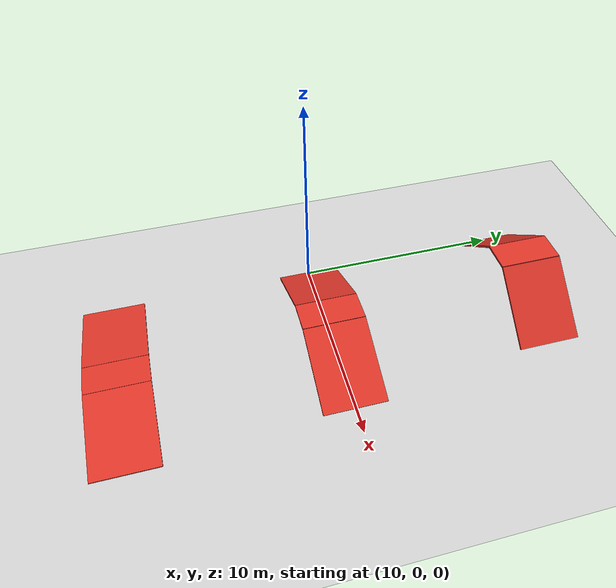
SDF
<?xml version="1.0" ?>
<sdf version="1.9">
    <world name="leg_test_ramps">

        <!-- Plugin for simulating physics -->
        <plugin
                filename="gz-sim-physics-system"
                name="gz::sim::systems::Physics">
        </plugin>

        <!-- Plugin for handling user commands -->
        <plugin
                filename="gz-sim-user-commands-system"
                name="gz::sim::systems::UserCommands">
        </plugin>

        <!-- Plugin for broadcasting scene updates -->
        <plugin
                filename="gz-sim-scene-broadcaster-system"
                name="gz::sim::systems::SceneBroadcaster">
        </plugin>

        <!-- Plugin for handling sensors like the LIDAR -->
        <plugin
                filename="gz-sim-sensors-system"
                name="gz::sim::systems::Sensors">
            <render_engine>ogre2</render_engine>
        </plugin>

        <!-- Plugin for IMU -->
        <plugin filename="gz-sim-imu-system"
                name="gz::sim::systems::Imu">
        </plugin>

        <!-- plugin for GPS  -->
        <plugin
                filename="gz-sim-navsat-system"
                name="gz::sim::systems::NavSat">
        </plugin>

        <light type="directional" name="sun">
            <cast_shadows>true</cast_shadows>
            <pose>0 0 10 0 0 0</pose>
            <diffuse>0.8 0.8 0.8 1</diffuse>
            <specular>0.2 0.2 0.2 1</specular>
            <direction>-0.5 0.1 -0.9</direction>
        </light>

        <model name="ground_plane">
            <static>true</static>
            <link name="link">
                <collision name="collision">
                    <geometry>
                        <plane>
                            <normal>0 0 1</normal>
                            <size>30 30</size>
                        </plane>
                    </geometry>
                </collision>
                <visual name="visual">
                    <geometry>
                        <plane>
                            <normal>0 0 1</normal>
                            <size>30 30</size>
                        </plane>
                    </geometry>
                    <material>
                        <ambient>0.8 0.8 0.8 1</ambient>
                        <diffuse>0.8 0.8 0.8 1</diffuse>
                        <specular>0.8 0.8 0.8 1</specular>
                    </material>
                </visual>
            </link>
        </model>

        <include>
            <uri>model://ramp_010</uri>
            <name>ramp_010</name>
            <pose>10 -10 0 0 0 0</pose>
        </include>

        <include>
            <uri>model://ramp_025</uri>
            <name>ramp_025</name>
            <pose>10 0 0 0 0 0</pose>
        </include>

        <include>
            <uri>model://ramp_040</uri>
            <name>ramp_040</name>
            <pose>10 10 0 0 0 0</pose>
        </include>

    </world>
</sdf>

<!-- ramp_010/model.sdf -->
<sdf version="1.9">
  <model name="ramp_010">
    <static>true</static>
    <link name="link">

      <!-- 각도: 10.0도 / 경사면 길이: 4.0m / 높이(H)=0.6946m / 수평거리(D)=3.9392m -->

      <collision name="up_collision">
        <pose>1.9696 0 0.3473 0 -0.174533 0</pose>
        <geometry><box><size>4.0 3.0 0.1</size></box></geometry>
      </collision>
      <visual name="up_visual">
        <pose>1.9696 0 0.3473 0 -0.174533 0</pose>
        <geometry><box><size>4.0 3.0 0.1</size></box></geometry>
        <material><ambient>0.8 0.15 0.1 1</ambient><diffuse>0.85 0.2 0.15 1</diffuse></material>
      </visual>

      <collision name="flat_collision">
        <pose>4.6892 0 0.6946 0 0 0</pose>
        <geometry><box><size>1.5 3.0 0.1</size></box></geometry>
      </collision>
      <visual name="flat_visual">
        <pose>4.6892 0 0.6946 0 0 0</pose>
        <geometry><box><size>1.5 3.0 0.1</size></box></geometry>
        <material><ambient>0.8 0.15 0.1 1</ambient><diffuse>0.85 0.2 0.15 1</diffuse></material>
      </visual>

      <collision name="down_collision">
        <pose>7.4088 0 0.3473 0 0.174533 0</pose>
        <geometry><box><size>4.0 3.0 0.1</size></box></geometry>
      </collision>
      <visual name="down_visual">
        <pose>7.4088 0 0.3473 0 0.174533 0</pose>
        <geometry><box><size>4.0 3.0 0.1</size></box></geometry>
        <material><ambient>0.8 0.15 0.1 1</ambient><diffuse>0.85 0.2 0.15 1</diffuse></material>
      </visual>

    </link>
  </model>
</sdf>

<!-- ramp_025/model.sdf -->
<sdf version="1.9">
  <model name="ramp_025">
    <static>true</static>
    <link name="link">

      <!-- 각도: 25.0도 / 경사면 길이: 4.0m / 높이(H)=1.6905m / 수평거리(D)=3.6252m -->

      <collision name="up_collision">
        <pose>1.8126 0 0.8452 0 -0.436332 0</pose>
        <geometry><box><size>4.0 3.0 0.1</size></box></geometry>
      </collision>
      <visual name="up_visual">
        <pose>1.8126 0 0.8452 0 -0.436332 0</pose>
        <geometry><box><size>4.0 3.0 0.1</size></box></geometry>
        <material><ambient>0.8 0.15 0.1 1</ambient><diffuse>0.85 0.2 0.15 1</diffuse></material>
      </visual>

      <collision name="flat_collision">
        <pose>4.3752 0 1.6905 0 0 0</pose>
        <geometry><box><size>1.5 3.0 0.1</size></box></geometry>
      </collision>
      <visual name="flat_visual">
        <pose>4.3752 0 1.6905 0 0 0</pose>
        <geometry><box><size>1.5 3.0 0.1</size></box></geometry>
        <material><ambient>0.8 0.15 0.1 1</ambient><diffuse>0.85 0.2 0.15 1</diffuse></material>
      </visual>

      <collision name="down_collision">
        <pose>6.9378 0 0.8452 0 0.436332 0</pose>
        <geometry><box><size>4.0 3.0 0.1</size></box></geometry>
      </collision>
      <visual name="down_visual">
        <pose>6.9378 0 0.8452 0 0.436332 0</pose>
        <geometry><box><size>4.0 3.0 0.1</size></box></geometry>
        <material><ambient>0.8 0.15 0.1 1</ambient><diffuse>0.85 0.2 0.15 1</diffuse></material>
      </visual>

    </link>
  </model>
</sdf>

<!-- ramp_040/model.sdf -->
<sdf version="1.9">
  <model name="ramp_040">
    <static>true</static>
    <link name="link">

      <!-- 각도: 40.0도 / 경사면 길이: 4.0m / 높이(H)=2.5712m / 수평거리(D)=3.0642m -->

      <collision name="up_collision">
        <pose>1.5321 0 1.2856 0 -0.698132 0</pose>
        <geometry><box><size>4.0 3.0 0.1</size></box></geometry>
      </collision>
      <visual name="up_visual">
        <pose>1.5321 0 1.2856 0 -0.698132 0</pose>
        <geometry><box><size>4.0 3.0 0.1</size></box></geometry>
        <material><ambient>0.8 0.15 0.1 1</ambient><diffuse>0.85 0.2 0.15 1</diffuse></material>
      </visual>

      <collision name="flat_collision">
        <pose>3.8142 0 2.5712 0 0 0</pose>
        <geometry><box><size>1.5 3.0 0.1</size></box></geometry>
      </collision>
      <visual name="flat_visual">
        <pose>3.8142 0 2.5712 0 0 0</pose>
        <geometry><box><size>1.5 3.0 0.1</size></box></geometry>
        <material><ambient>0.8 0.15 0.1 1</ambient><diffuse>0.85 0.2 0.15 1</diffuse></material>
      </visual>

      <collision name="down_collision">
        <pose>6.0963 0 1.2856 0 0.698132 0</pose>
        <geometry><box><size>4.0 3.0 0.1</size></box></geometry>
      </collision>
      <visual name="down_visual">
        <pose>6.0963 0 1.2856 0 0.698132 0</pose>
        <geometry><box><size>4.0 3.0 0.1</size></box></geometry>
        <material><ambient>0.8 0.15 0.1 1</ambient><diffuse>0.85 0.2 0.15 1</diffuse></material>
      </visual>

    </link>
  </model>
</sdf>
